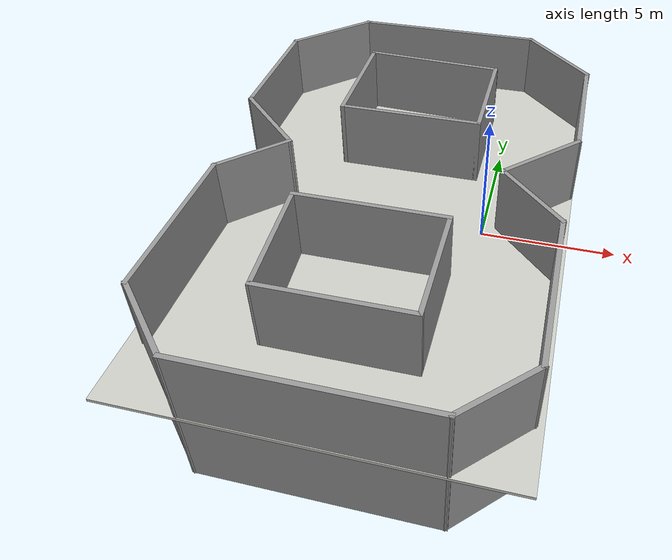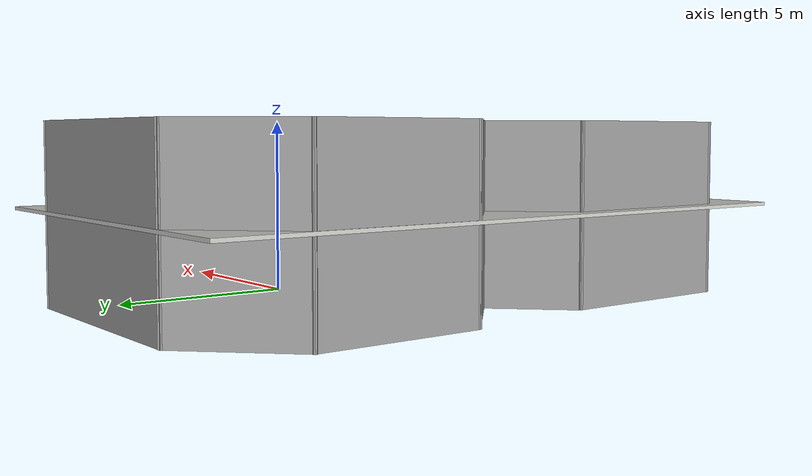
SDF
<?xml version='1.0'?>
<sdf version='1.6'>
  <model name='figure_8'>
    <pose frame=''>-2.79446 -2.55246 0 0 -0 0</pose>
    <link name='Floor_1'>
      <collision name='Floor_1_Collision'>
        <geometry>
          <box>
            <size>11.7997 18.5767 0.1</size>
          </box>
        </geometry>
        <pose frame=''>0 0 0.05 0 -0 0</pose>
      </collision>
      <visual name='Floor_1_Visual'>
        <pose frame=''>0 0 0.05 0 -0 0</pose>
        <geometry>
          <box>
            <size>11.7997 18.5767 0.1</size>
          </box>
        </geometry>
        <material>
          <script>
            <uri>file://media/materials/scripts/gazebo.material</uri>
            <name>Gazebo/CeilingTiled</name>
          </script>
          <ambient>0 0 0 1</ambient>
        </material>
      </visual>
      <pose frame=''>-0 0 2.5 0 -0 0</pose>
    </link>
    <link name='Wall_42'>
      <collision name='Wall_42_Collision'>
        <geometry>
          <box>
            <size>4.75 0.15 2.5</size>
          </box>
        </geometry>
        <pose frame=''>0 0 1.25 0 -0 0</pose>
      </collision>
      <visual name='Wall_42_Visual'>
        <pose frame=''>0 0 1.25 0 -0 0</pose>
        <geometry>
          <box>
            <size>4.75 0.15 2.5</size>
          </box>
        </geometry>
        <material>
          <script>
            <uri>file://media/materials/scripts/gazebo.material</uri>
            <name>Gazebo/Grey</name>
          </script>
          <ambient>1 1 1 1</ambient>
        </material>
      </visual>
      <pose frame=''>-5.79381 4.51348 0 0 -0 1.5708</pose>
    </link>
    <link name='Wall_43'>
      <collision name='Wall_43_Collision'>
        <geometry>
          <box>
            <size>3.5 0.15 2.5</size>
          </box>
        </geometry>
        <pose frame=''>0 0 1.25 0 -0 0</pose>
      </collision>
      <visual name='Wall_43_Visual'>
        <pose frame=''>0 0 1.25 0 -0 0</pose>
        <geometry>
          <box>
            <size>3.5 0.15 2.5</size>
          </box>
        </geometry>
        <material>
          <script>
            <uri>file://media/materials/scripts/gazebo.material</uri>
            <name>Gazebo/Grey</name>
          </script>
          <ambient>1 1 1 1</ambient>
        </material>
      </visual>
      <pose frame=''>-4.6094 7.99788 0 0 -0 0.785398</pose>
    </link>
    <link name='Wall_44'>
      <collision name='Wall_44_Collision'>
        <geometry>
          <box>
            <size>7 0.15 2.5</size>
          </box>
        </geometry>
        <pose frame=''>0 0 1.25 0 -0 0</pose>
      </collision>
      <visual name='Wall_44_Visual'>
        <pose frame=''>0 0 1.25 0 -0 0</pose>
        <geometry>
          <box>
            <size>7 0.15 2.5</size>
          </box>
        </geometry>
        <material>
          <script>
            <uri>file://media/materials/scripts/gazebo.material</uri>
            <name>Gazebo/Grey</name>
          </script>
          <ambient>1 1 1 1</ambient>
        </material>
      </visual>
      <pose frame=''>-0 9.18229 0 0 -0 0</pose>
    </link>
    <link name='Wall_45'>
      <collision name='Wall_45_Collision'>
        <geometry>
          <box>
            <size>3.5 0.15 2.5</size>
          </box>
        </geometry>
        <pose frame=''>0 0 1.25 0 -0 0</pose>
      </collision>
      <visual name='Wall_45_Visual'>
        <pose frame=''>0 0 1.25 0 -0 0</pose>
        <geometry>
          <box>
            <size>3.5 0.15 2.5</size>
          </box>
        </geometry>
        <material>
          <script>
            <uri>file://media/materials/scripts/gazebo.material</uri>
            <name>Gazebo/Grey</name>
          </script>
          <ambient>1 1 1 1</ambient>
        </material>
      </visual>
      <pose frame=''>4.6094 7.99788 0 0 0 -0.785398</pose>
    </link>
    <link name='Wall_46'>
      <collision name='Wall_46_Collision'>
        <geometry>
          <box>
            <size>4.75 0.15 2.5</size>
          </box>
        </geometry>
        <pose frame=''>0 0 1.25 0 -0 0</pose>
      </collision>
      <visual name='Wall_46_Visual'>
        <pose frame=''>0 0 1.25 0 -0 0</pose>
        <geometry>
          <box>
            <size>4.75 0.15 2.5</size>
          </box>
        </geometry>
        <material>
          <script>
            <uri>file://media/materials/scripts/gazebo.material</uri>
            <name>Gazebo/Grey</name>
          </script>
          <ambient>1 1 1 1</ambient>
        </material>
      </visual>
      <pose frame=''>5.79381 4.51348 0 0 0 -1.5708</pose>
    </link>
    <link name='Wall_47'>
      <collision name='Wall_47_Collision'>
        <geometry>
          <box>
            <size>3.25 0.15 2.5</size>
          </box>
        </geometry>
        <pose frame=''>0 0 1.25 0 -0 0</pose>
      </collision>
      <visual name='Wall_47_Visual'>
        <pose frame=''>0 0 1.25 0 -0 0</pose>
        <geometry>
          <box>
            <size>3.25 0.15 2.5</size>
          </box>
        </geometry>
        <material>
          <script>
            <uri>file://media/materials/scripts/gazebo.material</uri>
            <name>Gazebo/Grey</name>
          </script>
          <ambient>1 1 1 1</ambient>
        </material>
      </visual>
      <pose frame=''>4.69779 1.11746 0 0 0 -2.35619</pose>
    </link>
    <link name='Wall_48'>
      <collision name='Wall_48_Collision'>
        <geometry>
          <box>
            <size>3 0.15 2.5</size>
          </box>
        </geometry>
        <pose frame=''>0 0 1.25 0 -0 0</pose>
      </collision>
      <visual name='Wall_48_Visual'>
        <pose frame=''>0 0 1.25 0 -0 0</pose>
        <geometry>
          <box>
            <size>3 0.15 2.5</size>
          </box>
        </geometry>
        <material>
          <script>
            <uri>file://media/materials/scripts/gazebo.material</uri>
            <name>Gazebo/Grey</name>
          </script>
          <ambient>1 1 1 1</ambient>
        </material>
      </visual>
      <pose frame=''>4.6094 -0.986181 0 0 0 -0.785398</pose>
    </link>
    <link name='Wall_49'>
      <collision name='Wall_49_Collision'>
        <geometry>
          <box>
            <size>5.5 0.15 2.5</size>
          </box>
        </geometry>
        <pose frame=''>0 0 1.25 0 -0 0</pose>
      </collision>
      <visual name='Wall_49_Visual'>
        <pose frame=''>0 0 1.25 0 -0 0</pose>
        <geometry>
          <box>
            <size>5.5 0.15 2.5</size>
          </box>
        </geometry>
        <material>
          <script>
            <uri>file://media/materials/scripts/gazebo.material</uri>
            <name>Gazebo/Grey</name>
          </script>
          <ambient>1 1 1 1</ambient>
        </material>
      </visual>
      <pose frame=''>5.61703 -4.66881 0 0 0 -1.5708</pose>
    </link>
    <link name='Wall_50'>
      <collision name='Wall_50_Collision'>
        <geometry>
          <box>
            <size>2.75 0.15 2.5</size>
          </box>
        </geometry>
        <pose frame=''>0 0 1.25 0 -0 0</pose>
      </collision>
      <visual name='Wall_50_Visual'>
        <pose frame=''>0 0 1.25 0 -0 0</pose>
        <geometry>
          <box>
            <size>2.75 0.15 2.5</size>
          </box>
        </geometry>
        <material>
          <script>
            <uri>file://media/materials/scripts/gazebo.material</uri>
            <name>Gazebo/Grey</name>
          </script>
          <ambient>1 1 1 1</ambient>
        </material>
      </visual>
      <pose frame=''>4.69779 -8.26305 0 0 0 -2.35619</pose>
    </link>
    <link name='Wall_51'>
      <collision name='Wall_51_Collision'>
        <geometry>
          <box>
            <size>7.25 0.15 2.5</size>
          </box>
        </geometry>
        <pose frame=''>0 0 1.25 0 -0 0</pose>
      </collision>
      <visual name='Wall_51_Visual'>
        <pose frame=''>0 0 1.25 0 -0 0</pose>
        <geometry>
          <box>
            <size>7.25 0.15 2.5</size>
          </box>
        </geometry>
        <material>
          <script>
            <uri>file://media/materials/scripts/gazebo.material</uri>
            <name>Gazebo/Grey</name>
          </script>
          <ambient>1 1 1 1</ambient>
        </material>
      </visual>
      <pose frame=''>0.228553 -9.18229 0 0 -0 3.14159</pose>
    </link>
    <link name='Wall_52'>
      <collision name='Wall_52_Collision'>
        <geometry>
          <box>
            <size>3 0.15 2.5</size>
          </box>
        </geometry>
        <pose frame=''>0 0 1.25 0 -0 0</pose>
      </collision>
      <visual name='Wall_52_Visual'>
        <pose frame=''>0 0 1.25 0 -0 0</pose>
        <geometry>
          <box>
            <size>3 0.15 2.5</size>
          </box>
        </geometry>
        <material>
          <script>
            <uri>file://media/materials/scripts/gazebo.material</uri>
            <name>Gazebo/Grey</name>
          </script>
          <ambient>1 1 1 1</ambient>
        </material>
      </visual>
      <pose frame=''>-4.32907 -8.17466 0 0 -0 2.35619</pose>
    </link>
    <link name='Wall_53'>
      <collision name='Wall_53_Collision'>
        <geometry>
          <box>
            <size>5.5 0.15 2.5</size>
          </box>
        </geometry>
        <pose frame=''>0 0 1.25 0 -0 0</pose>
      </collision>
      <visual name='Wall_53_Visual'>
        <pose frame=''>0 0 1.25 0 -0 0</pose>
        <geometry>
          <box>
            <size>5.5 0.15 2.5</size>
          </box>
        </geometry>
        <material>
          <script>
            <uri>file://media/materials/scripts/gazebo.material</uri>
            <name>Gazebo/Grey</name>
          </script>
          <ambient>1 1 1 1</ambient>
        </material>
      </visual>
      <pose frame=''>-5.3367 -4.49203 0 0 -0 1.5708</pose>
    </link>
    <link name='Wall_54'>
      <collision name='Wall_54_Collision'>
        <geometry>
          <box>
            <size>2.75 0.15 2.5</size>
          </box>
        </geometry>
        <pose frame=''>0 0 1.25 0 -0 0</pose>
      </collision>
      <visual name='Wall_54_Visual'>
        <pose frame=''>0 0 1.25 0 -0 0</pose>
        <geometry>
          <box>
            <size>2.75 0.15 2.5</size>
          </box>
        </geometry>
        <material>
          <script>
            <uri>file://media/materials/scripts/gazebo.material</uri>
            <name>Gazebo/Grey</name>
          </script>
          <ambient>1 1 1 1</ambient>
        </material>
      </visual>
      <pose frame=''>-4.41746 -0.897792 0 0 -0 0.785398</pose>
    </link>
    <link name='Wall_55'>
      <collision name='Wall_55_Collision'>
        <geometry>
          <box>
            <size>3.32407 0.15 2.5</size>
          </box>
        </geometry>
        <pose frame=''>0 0 1.25 0 -0 0</pose>
      </collision>
      <visual name='Wall_55_Visual'>
        <pose frame=''>0 0 1.25 0 -0 0</pose>
        <geometry>
          <box>
            <size>3.32407 0.15 2.5</size>
          </box>
        </geometry>
        <material>
          <script>
            <uri>file://media/materials/scripts/gazebo.material</uri>
            <name>Gazebo/Grey</name>
          </script>
          <ambient>1 1 1 1</ambient>
        </material>
      </visual>
      <pose frame=''>-4.64602 1.11746 0 0 -0 2.37927</pose>
    </link>
    <link name='Wall_57'>
      <collision name='Wall_57_Collision'>
        <geometry>
          <box>
            <size>4.25 0.15 2.5</size>
          </box>
        </geometry>
        <pose frame=''>0 0 1.25 0 -0 0</pose>
      </collision>
      <visual name='Wall_57_Visual'>
        <pose frame=''>0 0 1.25 0 -0 0</pose>
        <geometry>
          <box>
            <size>4.25 0.15 2.5</size>
          </box>
        </geometry>
        <material>
          <script>
            <uri>file://media/materials/scripts/gazebo.material</uri>
            <name>Gazebo/Grey</name>
          </script>
          <ambient>1 1 1 1</ambient>
        </material>
      </visual>
      <pose frame=''>-2.44792 4.57721 0 0 0 -1.5708</pose>
    </link>
    <link name='Wall_58'>
      <collision name='Wall_58_Collision'>
        <geometry>
          <box>
            <size>5 0.15 2.5</size>
          </box>
        </geometry>
        <pose frame=''>0 0 1.25 0 -0 0</pose>
      </collision>
      <visual name='Wall_58_Visual'>
        <pose frame=''>0 0 1.25 0 -0 0</pose>
        <geometry>
          <box>
            <size>5 0.15 2.5</size>
          </box>
        </geometry>
        <material>
          <script>
            <uri>file://media/materials/scripts/gazebo.material</uri>
            <name>Gazebo/Grey</name>
          </script>
          <ambient>1 1 1 1</ambient>
        </material>
      </visual>
      <pose frame=''>-0.022916 2.52721 0 0 -0 0</pose>
    </link>
    <link name='Wall_59'>
      <collision name='Wall_59_Collision'>
        <geometry>
          <box>
            <size>4 0.15 2.5</size>
          </box>
        </geometry>
        <pose frame=''>0 0 1.25 0 -0 0</pose>
      </collision>
      <visual name='Wall_59_Visual'>
        <pose frame=''>0 0 1.25 0 -0 0</pose>
        <geometry>
          <box>
            <size>4 0.15 2.5</size>
          </box>
        </geometry>
        <material>
          <script>
            <uri>file://media/materials/scripts/gazebo.material</uri>
            <name>Gazebo/Grey</name>
          </script>
          <ambient>1 1 1 1</ambient>
        </material>
      </visual>
      <pose frame=''>2.40208 4.45221 0 0 -0 1.5708</pose>
    </link>
    <link name='Wall_60'>
      <collision name='Wall_60_Collision'>
        <geometry>
          <box>
            <size>5.00644 0.15 2.5</size>
          </box>
        </geometry>
        <pose frame=''>0 0 1.25 0 -0 0</pose>
      </collision>
      <visual name='Wall_60_Visual'>
        <pose frame=''>0 0 1.25 0 -0 0</pose>
        <geometry>
          <box>
            <size>5.00644 0.15 2.5</size>
          </box>
        </geometry>
        <material>
          <script>
            <uri>file://media/materials/scripts/gazebo.material</uri>
            <name>Gazebo/Grey</name>
          </script>
          <ambient>1 1 1 1</ambient>
        </material>
      </visual>
      <pose frame=''>-0.022916 6.50221 0 0 -0 3.09009</pose>
    </link>
    <link name='Wall_62'>
      <collision name='Wall_62_Collision'>
        <geometry>
          <box>
            <size>5 0.15 2.5</size>
          </box>
        </geometry>
        <pose frame=''>0 0 1.25 0 -0 0</pose>
      </collision>
      <visual name='Wall_62_Visual'>
        <pose frame=''>0 0 1.25 0 -0 0</pose>
        <geometry>
          <box>
            <size>5 0.15 2.5</size>
          </box>
        </geometry>
        <material>
          <script>
            <uri>file://media/materials/scripts/gazebo.material</uri>
            <name>Gazebo/Grey</name>
          </script>
          <ambient>1 1 1 1</ambient>
        </material>
      </visual>
      <pose frame=''>0.009588 -2.59312 0 0 -0 0</pose>
    </link>
    <link name='Wall_63'>
      <collision name='Wall_63_Collision'>
        <geometry>
          <box>
            <size>4 0.15 2.5</size>
          </box>
        </geometry>
        <pose frame=''>0 0 1.25 0 -0 0</pose>
      </collision>
      <visual name='Wall_63_Visual'>
        <pose frame=''>0 0 1.25 0 -0 0</pose>
        <geometry>
          <box>
            <size>4 0.15 2.5</size>
          </box>
        </geometry>
        <material>
          <script>
            <uri>file://media/materials/scripts/gazebo.material</uri>
            <name>Gazebo/Grey</name>
          </script>
          <ambient>1 1 1 1</ambient>
        </material>
      </visual>
      <pose frame=''>2.43459 -4.51812 0 0 0 -1.5708</pose>
    </link>
    <link name='Wall_64'>
      <collision name='Wall_64_Collision'>
        <geometry>
          <box>
            <size>4.75 0.15 2.5</size>
          </box>
        </geometry>
        <pose frame=''>0 0 1.25 0 -0 0</pose>
      </collision>
      <visual name='Wall_64_Visual'>
        <pose frame=''>0 0 1.25 0 -0 0</pose>
        <geometry>
          <box>
            <size>4.75 0.15 2.5</size>
          </box>
        </geometry>
        <material>
          <script>
            <uri>file://media/materials/scripts/gazebo.material</uri>
            <name>Gazebo/Grey</name>
          </script>
          <ambient>1 1 1 1</ambient>
        </material>
      </visual>
      <pose frame=''>0.134588 -6.44312 0 0 -0 3.14159</pose>
    </link>
    <link name='Wall_65'>
      <collision name='Wall_65_Collision'>
        <geometry>
          <box>
            <size>4.00811 0.15 2.5</size>
          </box>
        </geometry>
        <pose frame=''>0 0 1.25 0 -0 0</pose>
      </collision>
      <visual name='Wall_65_Visual'>
        <pose frame=''>0 0 1.25 0 -0 0</pose>
        <geometry>
          <box>
            <size>4.00811 0.15 2.5</size>
          </box>
        </geometry>
        <material>
          <script>
            <uri>file://media/materials/scripts/gazebo.material</uri>
            <name>Gazebo/Grey</name>
          </script>
          <ambient>1 1 1 1</ambient>
        </material>
      </visual>
      <pose frame=''>-2.29041 -4.51812 0 0 -0 1.63564</pose>
    </link>
    <link name='Wall_67'>
      <collision name='Wall_67_Collision'>
        <geometry>
          <box>
            <size>4.75 0.15 2.5</size>
          </box>
        </geometry>
        <pose frame=''>0 0 1.25 0 -0 0</pose>
      </collision>
      <visual name='Wall_67_Visual'>
        <pose frame=''>0 0 1.25 0 -0 0</pose>
        <geometry>
          <box>
            <size>4.75 0.15 2.5</size>
          </box>
        </geometry>
        <material>
          <script>
            <uri>file://media/materials/scripts/gazebo.material</uri>
            <name>Gazebo/Grey</name>
          </script>
          <ambient>1 1 1 1</ambient>
        </material>
      </visual>
      <pose frame=''>-5.79381 4.51348 2.5 0 -0 1.5708</pose>
    </link>
    <link name='Wall_68'>
      <collision name='Wall_68_Collision'>
        <geometry>
          <box>
            <size>3.5 0.15 2.5</size>
          </box>
        </geometry>
        <pose frame=''>0 0 1.25 0 -0 0</pose>
      </collision>
      <visual name='Wall_68_Visual'>
        <pose frame=''>0 0 1.25 0 -0 0</pose>
        <geometry>
          <box>
            <size>3.5 0.15 2.5</size>
          </box>
        </geometry>
        <material>
          <script>
            <uri>file://media/materials/scripts/gazebo.material</uri>
            <name>Gazebo/Grey</name>
          </script>
          <ambient>1 1 1 1</ambient>
        </material>
      </visual>
      <pose frame=''>-4.6094 7.99788 2.5 0 -0 0.785398</pose>
    </link>
    <link name='Wall_69'>
      <collision name='Wall_69_Collision'>
        <geometry>
          <box>
            <size>7 0.15 2.5</size>
          </box>
        </geometry>
        <pose frame=''>0 0 1.25 0 -0 0</pose>
      </collision>
      <visual name='Wall_69_Visual'>
        <pose frame=''>0 0 1.25 0 -0 0</pose>
        <geometry>
          <box>
            <size>7 0.15 2.5</size>
          </box>
        </geometry>
        <material>
          <script>
            <uri>file://media/materials/scripts/gazebo.material</uri>
            <name>Gazebo/Grey</name>
          </script>
          <ambient>1 1 1 1</ambient>
        </material>
      </visual>
      <pose frame=''>-0 9.18229 2.5 0 -0 0</pose>
    </link>
    <link name='Wall_70'>
      <collision name='Wall_70_Collision'>
        <geometry>
          <box>
            <size>3.5 0.15 2.5</size>
          </box>
        </geometry>
        <pose frame=''>0 0 1.25 0 -0 0</pose>
      </collision>
      <visual name='Wall_70_Visual'>
        <pose frame=''>0 0 1.25 0 -0 0</pose>
        <geometry>
          <box>
            <size>3.5 0.15 2.5</size>
          </box>
        </geometry>
        <material>
          <script>
            <uri>file://media/materials/scripts/gazebo.material</uri>
            <name>Gazebo/Grey</name>
          </script>
          <ambient>1 1 1 1</ambient>
        </material>
      </visual>
      <pose frame=''>4.6094 7.99788 2.5 0 0 -0.785398</pose>
    </link>
    <link name='Wall_71'>
      <collision name='Wall_71_Collision'>
        <geometry>
          <box>
            <size>4.75 0.15 2.5</size>
          </box>
        </geometry>
        <pose frame=''>0 0 1.25 0 -0 0</pose>
      </collision>
      <visual name='Wall_71_Visual'>
        <pose frame=''>0 0 1.25 0 -0 0</pose>
        <geometry>
          <box>
            <size>4.75 0.15 2.5</size>
          </box>
        </geometry>
        <material>
          <script>
            <uri>file://media/materials/scripts/gazebo.material</uri>
            <name>Gazebo/Grey</name>
          </script>
          <ambient>1 1 1 1</ambient>
        </material>
      </visual>
      <pose frame=''>5.79381 4.51348 2.5 0 0 -1.5708</pose>
    </link>
    <link name='Wall_72'>
      <collision name='Wall_72_Collision'>
        <geometry>
          <box>
            <size>3.25 0.15 2.5</size>
          </box>
        </geometry>
        <pose frame=''>0 0 1.25 0 -0 0</pose>
      </collision>
      <visual name='Wall_72_Visual'>
        <pose frame=''>0 0 1.25 0 -0 0</pose>
        <geometry>
          <box>
            <size>3.25 0.15 2.5</size>
          </box>
        </geometry>
        <material>
          <script>
            <uri>file://media/materials/scripts/gazebo.material</uri>
            <name>Gazebo/Grey</name>
          </script>
          <ambient>1 1 1 1</ambient>
        </material>
      </visual>
      <pose frame=''>4.69779 1.11746 2.5 0 0 -2.35619</pose>
    </link>
    <link name='Wall_73'>
      <collision name='Wall_73_Collision'>
        <geometry>
          <box>
            <size>3 0.15 2.5</size>
          </box>
        </geometry>
        <pose frame=''>0 0 1.25 0 -0 0</pose>
      </collision>
      <visual name='Wall_73_Visual'>
        <pose frame=''>0 0 1.25 0 -0 0</pose>
        <geometry>
          <box>
            <size>3 0.15 2.5</size>
          </box>
        </geometry>
        <material>
          <script>
            <uri>file://media/materials/scripts/gazebo.material</uri>
            <name>Gazebo/Grey</name>
          </script>
          <ambient>1 1 1 1</ambient>
        </material>
      </visual>
      <pose frame=''>4.6094 -0.986181 2.5 0 0 -0.785398</pose>
    </link>
    <link name='Wall_74'>
      <collision name='Wall_74_Collision'>
        <geometry>
          <box>
            <size>5.5 0.15 2.5</size>
          </box>
        </geometry>
        <pose frame=''>0 0 1.25 0 -0 0</pose>
      </collision>
      <visual name='Wall_74_Visual'>
        <pose frame=''>0 0 1.25 0 -0 0</pose>
        <geometry>
          <box>
            <size>5.5 0.15 2.5</size>
          </box>
        </geometry>
        <material>
          <script>
            <uri>file://media/materials/scripts/gazebo.material</uri>
            <name>Gazebo/Grey</name>
          </script>
          <ambient>1 1 1 1</ambient>
        </material>
      </visual>
      <pose frame=''>5.61703 -4.66881 2.5 0 0 -1.5708</pose>
    </link>
    <link name='Wall_75'>
      <collision name='Wall_75_Collision'>
        <geometry>
          <box>
            <size>2.75 0.15 2.5</size>
          </box>
        </geometry>
        <pose frame=''>0 0 1.25 0 -0 0</pose>
      </collision>
      <visual name='Wall_75_Visual'>
        <pose frame=''>0 0 1.25 0 -0 0</pose>
        <geometry>
          <box>
            <size>2.75 0.15 2.5</size>
          </box>
        </geometry>
        <material>
          <script>
            <uri>file://media/materials/scripts/gazebo.material</uri>
            <name>Gazebo/Grey</name>
          </script>
          <ambient>1 1 1 1</ambient>
        </material>
      </visual>
      <pose frame=''>4.69779 -8.26305 2.5 0 0 -2.35619</pose>
    </link>
    <link name='Wall_76'>
      <collision name='Wall_76_Collision'>
        <geometry>
          <box>
            <size>7.25 0.15 2.5</size>
          </box>
        </geometry>
        <pose frame=''>0 0 1.25 0 -0 0</pose>
      </collision>
      <visual name='Wall_76_Visual'>
        <pose frame=''>0 0 1.25 0 -0 0</pose>
        <geometry>
          <box>
            <size>7.25 0.15 2.5</size>
          </box>
        </geometry>
        <material>
          <script>
            <uri>file://media/materials/scripts/gazebo.material</uri>
            <name>Gazebo/Grey</name>
          </script>
          <ambient>1 1 1 1</ambient>
        </material>
      </visual>
      <pose frame=''>0.228553 -9.18229 2.5 0 -0 3.14159</pose>
    </link>
    <link name='Wall_77'>
      <collision name='Wall_77_Collision'>
        <geometry>
          <box>
            <size>3 0.15 2.5</size>
          </box>
        </geometry>
        <pose frame=''>0 0 1.25 0 -0 0</pose>
      </collision>
      <visual name='Wall_77_Visual'>
        <pose frame=''>0 0 1.25 0 -0 0</pose>
        <geometry>
          <box>
            <size>3 0.15 2.5</size>
          </box>
        </geometry>
        <material>
          <script>
            <uri>file://media/materials/scripts/gazebo.material</uri>
            <name>Gazebo/Grey</name>
          </script>
          <ambient>1 1 1 1</ambient>
        </material>
      </visual>
      <pose frame=''>-4.32907 -8.17466 2.5 0 -0 2.35619</pose>
    </link>
    <link name='Wall_78'>
      <collision name='Wall_78_Collision'>
        <geometry>
          <box>
            <size>5.5 0.15 2.5</size>
          </box>
        </geometry>
        <pose frame=''>0 0 1.25 0 -0 0</pose>
      </collision>
      <visual name='Wall_78_Visual'>
        <pose frame=''>0 0 1.25 0 -0 0</pose>
        <geometry>
          <box>
            <size>5.5 0.15 2.5</size>
          </box>
        </geometry>
        <material>
          <script>
            <uri>file://media/materials/scripts/gazebo.material</uri>
            <name>Gazebo/Grey</name>
          </script>
          <ambient>1 1 1 1</ambient>
        </material>
      </visual>
      <pose frame=''>-5.3367 -4.49203 2.5 0 -0 1.5708</pose>
    </link>
    <link name='Wall_79'>
      <collision name='Wall_79_Collision'>
        <geometry>
          <box>
            <size>2.75 0.15 2.5</size>
          </box>
        </geometry>
        <pose frame=''>0 0 1.25 0 -0 0</pose>
      </collision>
      <visual name='Wall_79_Visual'>
        <pose frame=''>0 0 1.25 0 -0 0</pose>
        <geometry>
          <box>
            <size>2.75 0.15 2.5</size>
          </box>
        </geometry>
        <material>
          <script>
            <uri>file://media/materials/scripts/gazebo.material</uri>
            <name>Gazebo/Grey</name>
          </script>
          <ambient>1 1 1 1</ambient>
        </material>
      </visual>
      <pose frame=''>-4.41746 -0.897792 2.5 0 -0 0.785398</pose>
    </link>
    <link name='Wall_80'>
      <collision name='Wall_80_Collision'>
        <geometry>
          <box>
            <size>3.32407 0.15 2.5</size>
          </box>
        </geometry>
        <pose frame=''>0 0 1.25 0 -0 0</pose>
      </collision>
      <visual name='Wall_80_Visual'>
        <pose frame=''>0 0 1.25 0 -0 0</pose>
        <geometry>
          <box>
            <size>3.32407 0.15 2.5</size>
          </box>
        </geometry>
        <material>
          <script>
            <uri>file://media/materials/scripts/gazebo.material</uri>
            <name>Gazebo/Grey</name>
          </script>
          <ambient>1 1 1 1</ambient>
        </material>
      </visual>
      <pose frame=''>-4.64602 1.11746 2.5 0 -0 2.37927</pose>
    </link>
    <link name='Wall_81'>
      <collision name='Wall_81_Collision'>
        <geometry>
          <box>
            <size>4.25 0.15 2.5</size>
          </box>
        </geometry>
        <pose frame=''>0 0 1.25 0 -0 0</pose>
      </collision>
      <visual name='Wall_81_Visual'>
        <pose frame=''>0 0 1.25 0 -0 0</pose>
        <geometry>
          <box>
            <size>4.25 0.15 2.5</size>
          </box>
        </geometry>
        <material>
          <script>
            <uri>file://media/materials/scripts/gazebo.material</uri>
            <name>Gazebo/Grey</name>
          </script>
          <ambient>1 1 1 1</ambient>
        </material>
      </visual>
      <pose frame=''>-2.44792 4.57721 2.5 0 0 -1.5708</pose>
    </link>
    <link name='Wall_82'>
      <collision name='Wall_82_Collision'>
        <geometry>
          <box>
            <size>5 0.15 2.5</size>
          </box>
        </geometry>
        <pose frame=''>0 0 1.25 0 -0 0</pose>
      </collision>
      <visual name='Wall_82_Visual'>
        <pose frame=''>0 0 1.25 0 -0 0</pose>
        <geometry>
          <box>
            <size>5 0.15 2.5</size>
          </box>
        </geometry>
        <material>
          <script>
            <uri>file://media/materials/scripts/gazebo.material</uri>
            <name>Gazebo/Grey</name>
          </script>
          <ambient>1 1 1 1</ambient>
        </material>
      </visual>
      <pose frame=''>-0.022916 2.52721 2.5 0 -0 0</pose>
    </link>
    <link name='Wall_83'>
      <collision name='Wall_83_Collision'>
        <geometry>
          <box>
            <size>4 0.15 2.5</size>
          </box>
        </geometry>
        <pose frame=''>0 0 1.25 0 -0 0</pose>
      </collision>
      <visual name='Wall_83_Visual'>
        <pose frame=''>0 0 1.25 0 -0 0</pose>
        <geometry>
          <box>
            <size>4 0.15 2.5</size>
          </box>
        </geometry>
        <material>
          <script>
            <uri>file://media/materials/scripts/gazebo.material</uri>
            <name>Gazebo/Grey</name>
          </script>
          <ambient>1 1 1 1</ambient>
        </material>
      </visual>
      <pose frame=''>2.40208 4.45221 2.5 0 -0 1.5708</pose>
    </link>
    <link name='Wall_84'>
      <collision name='Wall_84_Collision'>
        <geometry>
          <box>
            <size>5.00644 0.15 2.5</size>
          </box>
        </geometry>
        <pose frame=''>0 0 1.25 0 -0 0</pose>
      </collision>
      <visual name='Wall_84_Visual'>
        <pose frame=''>0 0 1.25 0 -0 0</pose>
        <geometry>
          <box>
            <size>5.00644 0.15 2.5</size>
          </box>
        </geometry>
        <material>
          <script>
            <uri>file://media/materials/scripts/gazebo.material</uri>
            <name>Gazebo/Grey</name>
          </script>
          <ambient>1 1 1 1</ambient>
        </material>
      </visual>
      <pose frame=''>-0.022916 6.50221 2.5 0 -0 3.09009</pose>
    </link>
    <link name='Wall_85'>
      <collision name='Wall_85_Collision'>
        <geometry>
          <box>
            <size>5 0.15 2.5</size>
          </box>
        </geometry>
        <pose frame=''>0 0 1.25 0 -0 0</pose>
      </collision>
      <visual name='Wall_85_Visual'>
        <pose frame=''>0 0 1.25 0 -0 0</pose>
        <geometry>
          <box>
            <size>5 0.15 2.5</size>
          </box>
        </geometry>
        <material>
          <script>
            <uri>file://media/materials/scripts/gazebo.material</uri>
            <name>Gazebo/Grey</name>
          </script>
          <ambient>1 1 1 1</ambient>
        </material>
      </visual>
      <pose frame=''>0.009588 -2.59312 2.5 0 -0 0</pose>
    </link>
    <link name='Wall_86'>
      <collision name='Wall_86_Collision'>
        <geometry>
          <box>
            <size>4 0.15 2.5</size>
          </box>
        </geometry>
        <pose frame=''>0 0 1.25 0 -0 0</pose>
      </collision>
      <visual name='Wall_86_Visual'>
        <pose frame=''>0 0 1.25 0 -0 0</pose>
        <geometry>
          <box>
            <size>4 0.15 2.5</size>
          </box>
        </geometry>
        <material>
          <script>
            <uri>file://media/materials/scripts/gazebo.material</uri>
            <name>Gazebo/Grey</name>
          </script>
          <ambient>1 1 1 1</ambient>
        </material>
      </visual>
      <pose frame=''>2.43459 -4.51812 2.5 0 0 -1.5708</pose>
    </link>
    <link name='Wall_87'>
      <collision name='Wall_87_Collision'>
        <geometry>
          <box>
            <size>4.75 0.15 2.5</size>
          </box>
        </geometry>
        <pose frame=''>0 0 1.25 0 -0 0</pose>
      </collision>
      <visual name='Wall_87_Visual'>
        <pose frame=''>0 0 1.25 0 -0 0</pose>
        <geometry>
          <box>
            <size>4.75 0.15 2.5</size>
          </box>
        </geometry>
        <material>
          <script>
            <uri>file://media/materials/scripts/gazebo.material</uri>
            <name>Gazebo/Grey</name>
          </script>
          <ambient>1 1 1 1</ambient>
        </material>
      </visual>
      <pose frame=''>0.134588 -6.44312 2.5 0 -0 3.14159</pose>
    </link>
    <link name='Wall_88'>
      <collision name='Wall_88_Collision'>
        <geometry>
          <box>
            <size>4.00811 0.15 2.5</size>
          </box>
        </geometry>
        <pose frame=''>0 0 1.25 0 -0 0</pose>
      </collision>
      <visual name='Wall_88_Visual'>
        <pose frame=''>0 0 1.25 0 -0 0</pose>
        <geometry>
          <box>
            <size>4.00811 0.15 2.5</size>
          </box>
        </geometry>
        <material>
          <script>
            <uri>file://media/materials/scripts/gazebo.material</uri>
            <name>Gazebo/Grey</name>
          </script>
          <ambient>1 1 1 1</ambient>
        </material>
      </visual>
      <pose frame=''>-2.29041 -4.51812 2.5 0 -0 1.63564</pose>
    </link>
    <static>1</static>
  </model>
</sdf>
